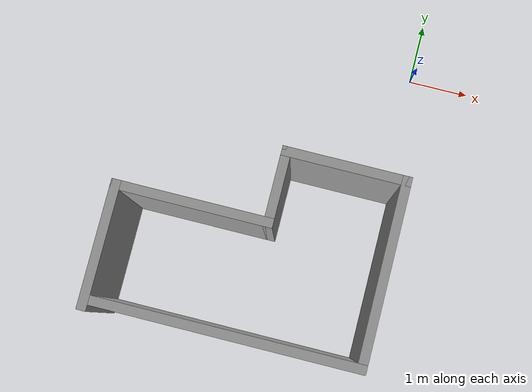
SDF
<?xml version='1.0'?>
<sdf version='1.7'>
  <model name='lwall'>
    <pose>-1.93 -2.5675 0 0 -0 0</pose>
    <link name='Wall_0'>
      <collision name='Wall_0_Collision'>
        <geometry>
          <box>
            <size>2.5 0.15 2.5</size>
          </box>
        </geometry>
        <pose>0 0 1.25 0 -0 0</pose>
      </collision>
      <visual name='Wall_0_Visual'>
        <pose>0 0 1.25 0 -0 0</pose>
        <geometry>
          <box>
            <size>2.5 0.15 2.5</size>
          </box>
        </geometry>
        <material>
          <script>
            <uri>file://media/materials/scripts/gazebo.material</uri>
            <name>Gazebo/Grey</name>
          </script>
          <ambient>0.729412 0.741176 0.713726 1</ambient>
        </material>
        <meta>
          <layer>0</layer>
        </meta>
      </visual>
      <pose>-0.925 -0.6425 0 0 -0 0</pose>
    </link>
    <link name='Wall_1'>
      <collision name='Wall_1_Collision'>
        <geometry>
          <box>
            <size>1.25 0.15 2.5</size>
          </box>
        </geometry>
        <pose>0 0 1.25 0 -0 0</pose>
      </collision>
      <visual name='Wall_1_Visual'>
        <pose>0 0 1.25 0 -0 0</pose>
        <geometry>
          <box>
            <size>1.25 0.15 2.5</size>
          </box>
        </geometry>
        <material>
          <script>
            <uri>file://media/materials/scripts/gazebo.material</uri>
            <name>Gazebo/Grey</name>
          </script>
          <ambient>0.729412 0.741176 0.713726 1</ambient>
        </material>
        <meta>
          <layer>0</layer>
        </meta>
      </visual>
      <pose>0.25 -0.0925 0 0 -0 1.5708</pose>
    </link>
    <link name='Wall_2'>
      <collision name='Wall_2_Collision'>
        <geometry>
          <box>
            <size>2 0.15 2.5</size>
          </box>
        </geometry>
        <pose>0 0 1.25 0 -0 0</pose>
      </collision>
      <visual name='Wall_2_Visual'>
        <pose>0 0 1.25 0 -0 0</pose>
        <geometry>
          <box>
            <size>2 0.15 2.5</size>
          </box>
        </geometry>
        <material>
          <script>
            <uri>file://media/materials/scripts/gazebo.material</uri>
            <name>Gazebo/Grey</name>
          </script>
          <ambient>0.729412 0.741176 0.713726 1</ambient>
        </material>
        <meta>
          <layer>0</layer>
        </meta>
      </visual>
      <pose>1.175 0.4575 0 0 -0 0</pose>
    </link>
    <link name='Wall_3'>
      <collision name='Wall_3_Collision'>
        <geometry>
          <box>
            <size>3 0.15 2.5</size>
          </box>
        </geometry>
        <pose>0 0 1.25 0 -0 0</pose>
      </collision>
      <visual name='Wall_3_Visual'>
        <pose>0 0 1.25 0 -0 0</pose>
        <geometry>
          <box>
            <size>3 0.15 2.5</size>
          </box>
        </geometry>
        <material>
          <script>
            <uri>file://media/materials/scripts/gazebo.material</uri>
            <name>Gazebo/Grey</name>
          </script>
          <ambient>0.729412 0.741176 0.713726 1</ambient>
        </material>
        <meta>
          <layer>0</layer>
        </meta>
      </visual>
      <pose>2.1 -0.9675 0 0 -0 -1.5708</pose>
    </link>
    <link name='Wall_4'>
      <collision name='Wall_4_Collision'>
        <geometry>
          <box>
            <size>4.25 0.15 2.5</size>
          </box>
        </geometry>
        <pose>0 0 1.25 0 -0 0</pose>
      </collision>
      <visual name='Wall_4_Visual'>
        <pose>0 0 1.25 0 -0 0</pose>
        <geometry>
          <box>
            <size>4.25 0.15 2.5</size>
          </box>
        </geometry>
        <material>
          <script>
            <uri>file://media/materials/scripts/gazebo.material</uri>
            <name>Gazebo/Grey</name>
          </script>
          <ambient>0.729412 0.741176 0.713726 1</ambient>
        </material>
        <meta>
          <layer>0</layer>
        </meta>
      </visual>
      <pose>0.05 -2.3925 0 0 -0 3.14159</pose>
    </link>
    <link name='Wall_6'>
      <collision name='Wall_6_Collision'>
        <geometry>
          <box>
            <size>2 0.15 2.5</size>
          </box>
        </geometry>
        <pose>0 0 1.25 0 -0 0</pose>
      </collision>
      <visual name='Wall_6_Visual'>
        <pose>0 0 1.25 0 -0 0</pose>
        <geometry>
          <box>
            <size>2 0.15 2.5</size>
          </box>
        </geometry>
        <material>
          <script>
            <uri>file://media/materials/scripts/gazebo.material</uri>
            <name>Gazebo/Grey</name>
          </script>
          <ambient>0.729412 0.741176 0.713726 1</ambient>
        </material>
        <meta>
          <layer>0</layer>
        </meta>
      </visual>
      <pose>-2.1 -1.5675 0 0 -0 -1.5708</pose>
    </link>
    <static>1</static>
  </model>
</sdf>
